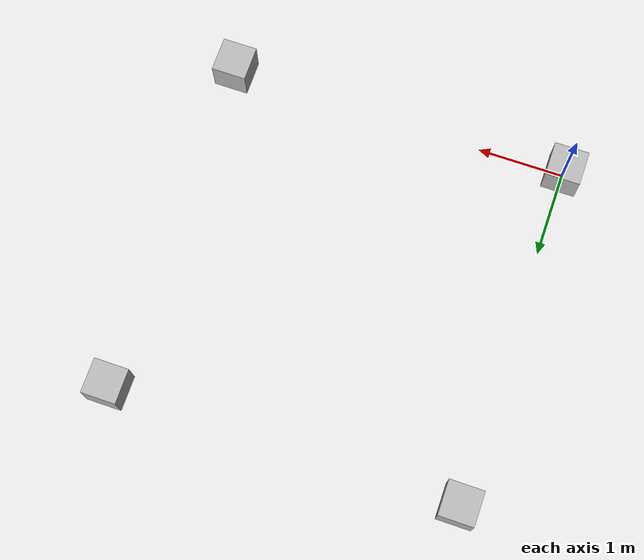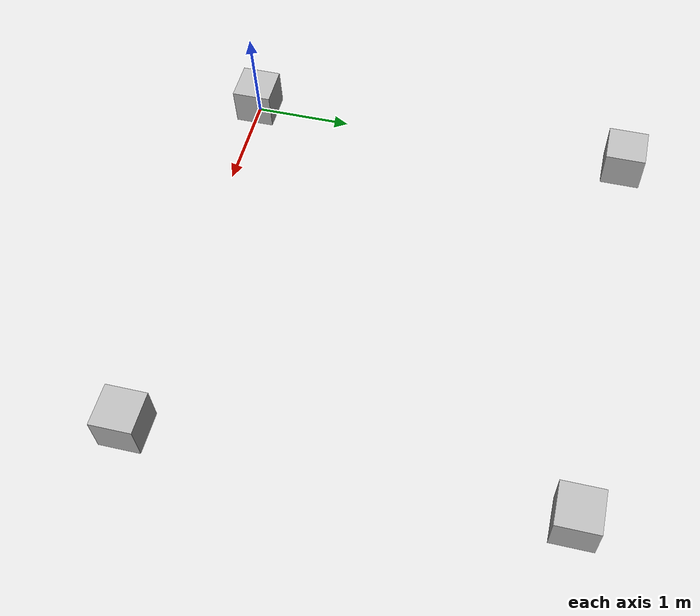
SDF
<sdf version="1.7">
    <world name="default">
        <light name="directionallight" type="directional">
            <pose>3.14919 1.1553 2 0 -0 0</pose>
            <cast_shadows>false</cast_shadows>
            <intensity>1</intensity>
            <direction>0 0 -1</direction>
            <diffuse>0.8 0.8 0.8 1</diffuse>
            <specular>0.2 0.2 0.2 1</specular>
            <attenuation>
                <range>1000</range>
                <linear>0.01</linear>
                <constant>0.90000000000000002</constant>
                <quadratic>0.001</quadratic>
            </attenuation>
            <spot>
                <inner_angle>0</inner_angle>
                <outer_angle>0</outer_angle>
                <falloff>0</falloff>
            </spot>
        </light>

        <model name="aruco_code_0"><static>1</static><pose>0 0 0.2 0 0 0</pose><link name="link_aruco_0"><collision name="collision_aruco_0"><geometry><box><size>0.4 0.4 0.4</size></box></geometry></collision><visual name="visual_aruco_0"><geometry><box><size>0.4 0.4 0.4</size></box></geometry><material><script><uri>model://aruco_0/materials/scripts</uri><uri>model://aruco_0/materials/textures</uri><name>Aruco/Aruco_0</name></script></material></visual></link></model><model name="aruco_code_1"><static>1</static><pose>0 4 0.2 0 0 0</pose><link name="link_aruco_1"><collision name="collision_aruco_1"><geometry><box><size>0.4 0.4 0.4</size></box></geometry></collision><visual name="visual_aruco_1"><geometry><box><size>0.4 0.4 0.4</size></box></geometry><material><script><uri>model://aruco_1/materials/scripts</uri><uri>model://aruco_1/materials/textures</uri><name>Aruco/Aruco_1</name></script></material></visual></link></model><model name="aruco_code_2"><static>1</static><pose>4 0 0.2 0 0 0</pose><link name="link_aruco_2"><collision name="collision_aruco_2"><geometry><box><size>0.4 0.4 0.4</size></box></geometry></collision><visual name="visual_aruco_2"><geometry><box><size>0.4 0.4 0.4</size></box></geometry><material><script><uri>model://aruco_2/materials/scripts</uri><uri>model://aruco_2/materials/textures</uri><name>Aruco/Aruco_2</name></script></material></visual></link></model><model name="aruco_code_3"><static>1</static><pose>4 4 0.2 0 0 0</pose><link name="link_aruco_3"><collision name="collision_aruco_3"><geometry><box><size>0.4 0.4 0.4</size></box></geometry></collision><visual name="visual_aruco_3"><geometry><box><size>0.4 0.4 0.4</size></box></geometry><material><script><uri>model://aruco_3/materials/scripts</uri><uri>model://aruco_3/materials/textures</uri><name>Aruco/Aruco_3</name></script></material></visual></link></model></world>
</sdf>
